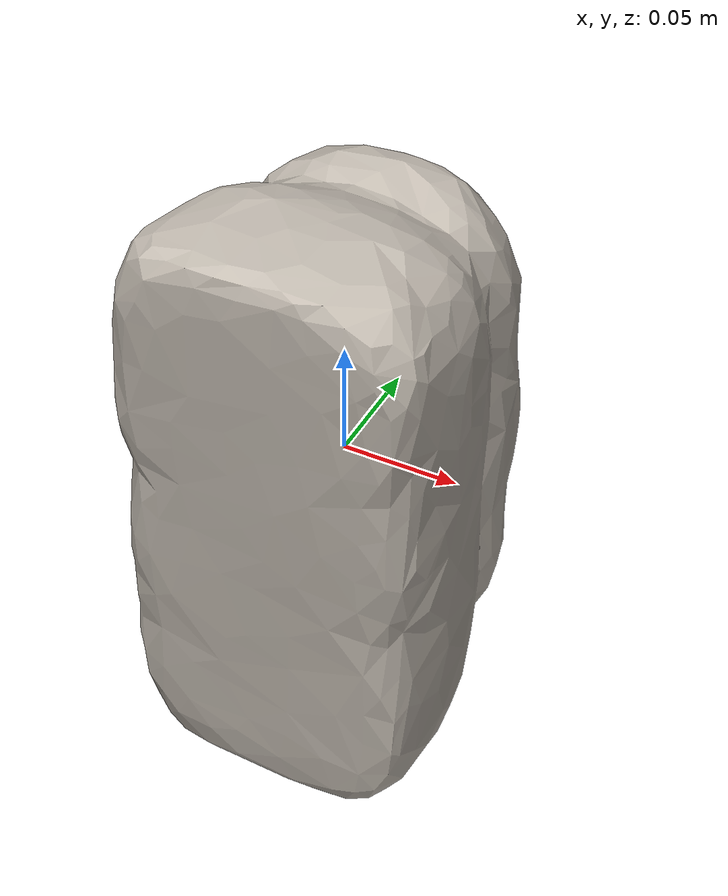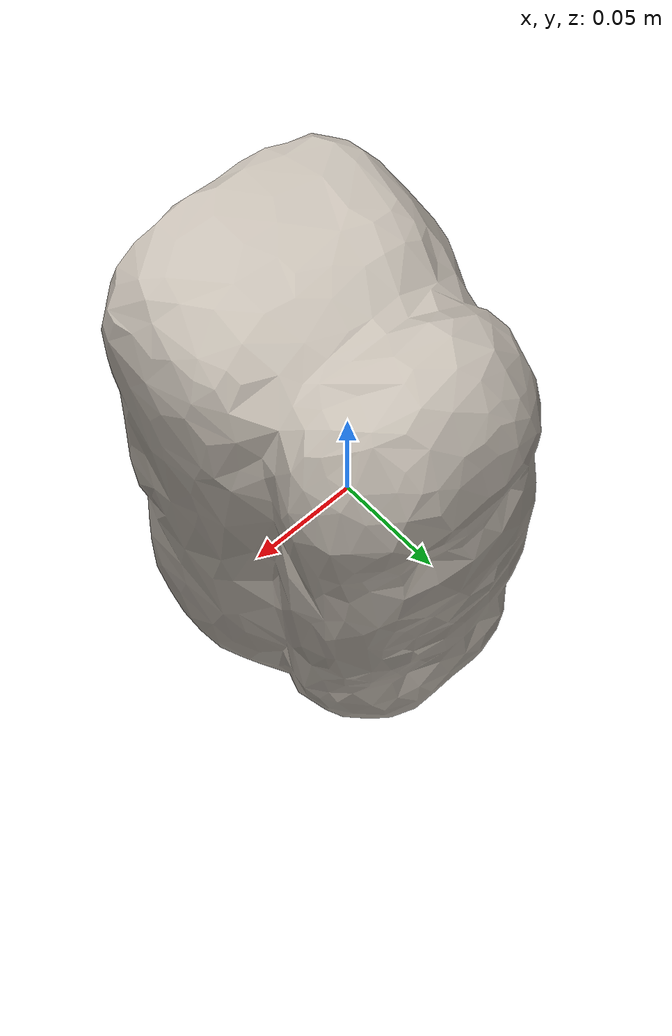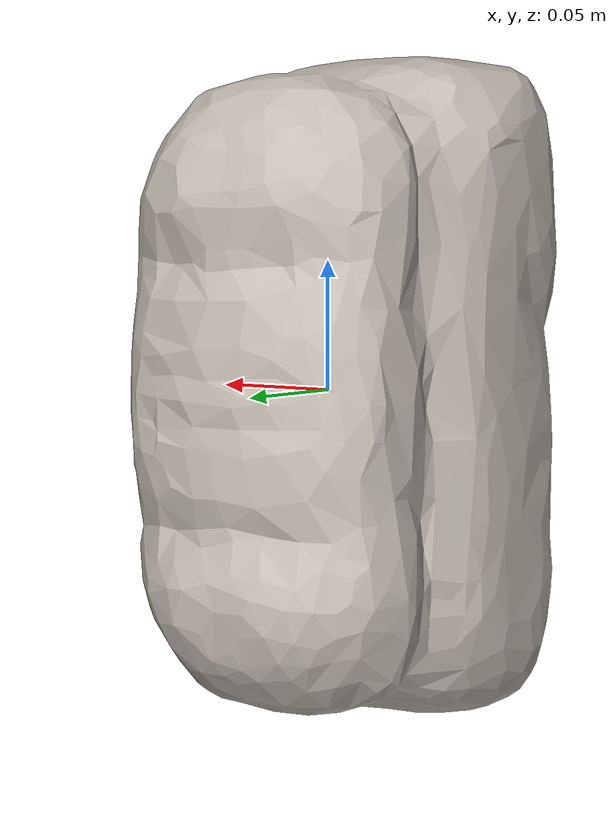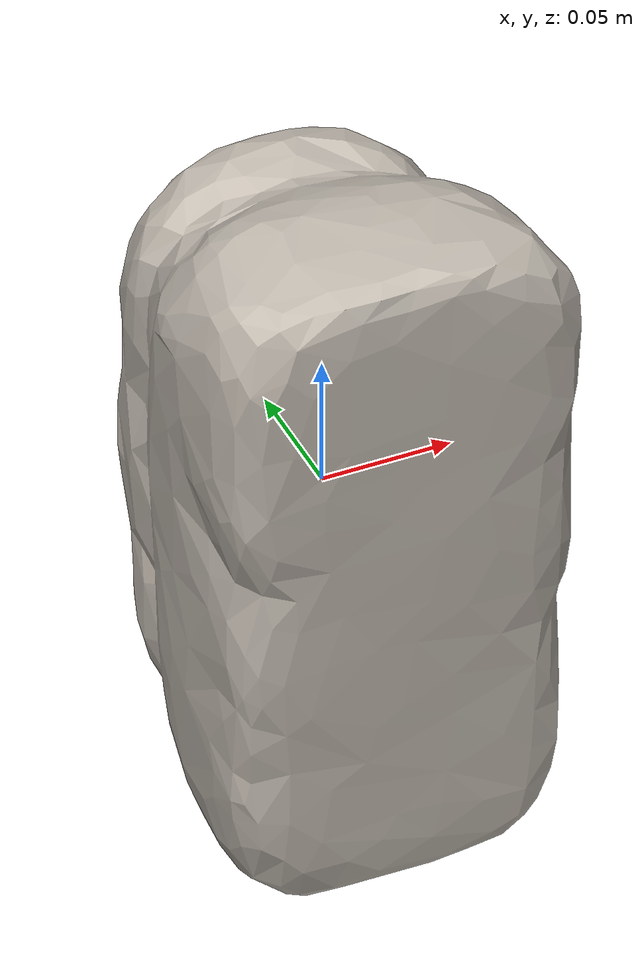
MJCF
<mujoco model="Bread_13">
  <compiler autolimits="true" boundmass="0.01" angle="radian"/>
  <default>
    <default class="/">
      <default class="__VISUAL_MJT__">
        <geom contype="0" conaffinity="0" group="0"/>
      </default>
      <default class="__STRUCTURAL_MJT__">
        <geom contype="8" conaffinity="15" group="4" friction="0.90000000000000002 0.90000000000000002 0.001" solref="0.025000000000000001 1" solimp="0.998 0.998 0.001"/>
      </default>
      <default class="__DYNAMIC_MJT__">
        <geom contype="1" conaffinity="15" group="4" friction="0.90000000000000002 0.90000000000000002 0.001" solref="0.025000000000000001 1" solimp="0.998 0.998 0.001"/>
      </default>
    </default>
  </default>
  <asset>
    <texture name="Bread6_Mat1" type="2d" file="Bread6_AlbedoTransparency.png"/>
    <material name="material_Bread6_Mat1" class="/" texture="Bread6_Mat1" specular="0.5" shininess="0.5" rgba="1 1 1 1"/>
    <mesh name="Bread_13_bread6_a_mesh" class="/" file="Bread_13_bread6_a_mesh/Bread_13_bread6_a_mesh.obj" scale="1 1 1"/>
  </asset>
  <worldbody>
    <body name="Bread_13">
      <joint name="Bread_13_free" class="/" type="free" pos="0 0 0" axis="0 0 1" stiffness="0" range="0 0" armature="0" damping="0.10000000000000001" frictionloss="0"/>
      <body name="Bread_13_bread6_a_mesh" pos="-0 -0.0015900000000000001 0" quat="1 0 0 0">
        <geom name="Bread_13_bread6_a_mesh" class="__VISUAL_MJT__" type="mesh" material="material_Bread6_Mat1" shellinertia="false" mesh="Bread_13_bread6_a_mesh"/>
        <geom name="Bread_13_PrimitiveCollider_0" class="__DYNAMIC_MJT__" type="box" size="0.068053930997848511 0.045373439788818359 0.13269984722137451" rgba="0 1 0 1" pos="-0 -0.032836437225341797 0" quat="1 0 0 0"/>
        <geom name="Bread_13_PrimitiveCollider_1" class="__DYNAMIC_MJT__" type="capsule" size="0.058581873774528503 0.065392449498176575" rgba="0 1 0 1" pos="-0 0.022810310125350952 1.0430812835693359e-06" quat="1.517286444557021e-06 0.99999999999884892 0 0"/>
      </body>
    </body>
  </worldbody>
</mujoco>
